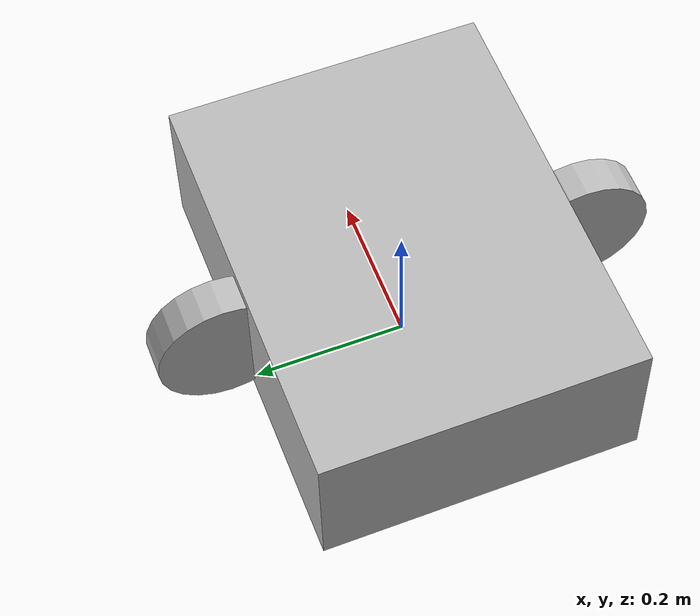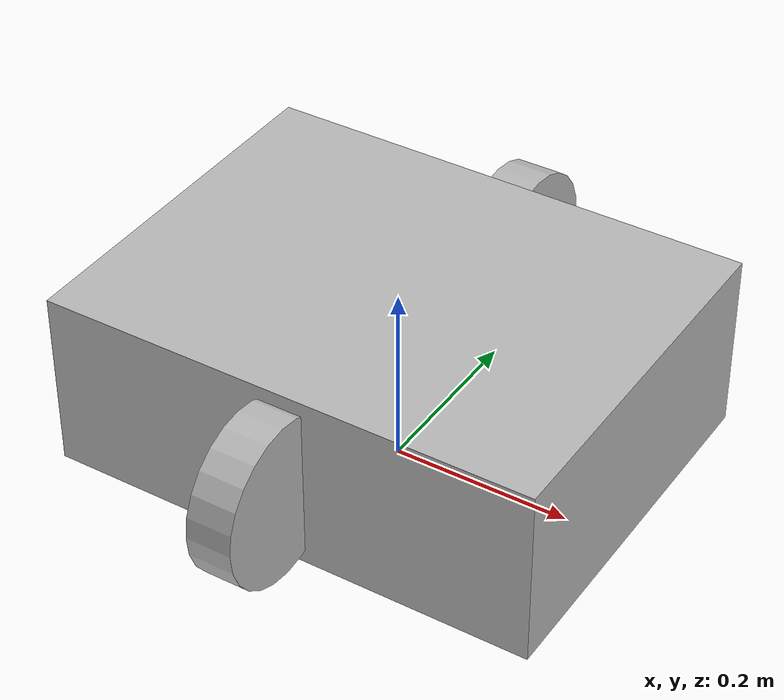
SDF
<?xml version="1.0"?>
<sdf version="1.9">
  <model name="research_ground_robot">
    <pose>0 0 0.12 0 0 0</pose>
    <link name="base_link">
      <inertial><mass>8.0</mass><inertia><ixx>0.12</ixx><iyy>0.18</iyy><izz>0.24</izz></inertia></inertial>
      <collision name="base_collision"><geometry><box><size>0.55 0.42 0.20</size></box></geometry></collision>
      <visual name="base_visual"><geometry><box><size>0.55 0.42 0.20</size></box></geometry></visual>
    </link>
    <link name="left_wheel">
      <pose>0 0.24 0 0 1.5708 0</pose>
      <inertial><mass>0.5</mass><inertia><ixx>0.01</ixx><iyy>0.01</iyy><izz>0.01</izz></inertia></inertial>
      <collision name="collision"><geometry><cylinder><radius>0.09</radius><length>0.05</length></cylinder></geometry></collision>
      <visual name="visual"><geometry><cylinder><radius>0.09</radius><length>0.05</length></cylinder></geometry></visual>
    </link>
    <link name="right_wheel">
      <pose>0 -0.24 0 0 1.5708 0</pose>
      <inertial><mass>0.5</mass><inertia><ixx>0.01</ixx><iyy>0.01</iyy><izz>0.01</izz></inertia></inertial>
      <collision name="collision"><geometry><cylinder><radius>0.09</radius><length>0.05</length></cylinder></geometry></collision>
      <visual name="visual"><geometry><cylinder><radius>0.09</radius><length>0.05</length></cylinder></geometry></visual>
    </link>
    <joint name="left_wheel_joint" type="revolute"><parent>base_link</parent><child>left_wheel</child><axis><xyz>0 1 0</xyz></axis></joint>
    <joint name="right_wheel_joint" type="revolute"><parent>base_link</parent><child>right_wheel</child><axis><xyz>0 1 0</xyz></axis></joint>
    <plugin filename="gz-sim-diff-drive-system" name="gz::sim::systems::DiffDrive">
      <left_joint>left_wheel_joint</left_joint><right_joint>right_wheel_joint</right_joint>
      <wheel_separation>0.48</wheel_separation><wheel_radius>0.09</wheel_radius>
      <topic>/swarm/__ROBOT__/cmd_vel</topic><odom_topic>/swarm/__ROBOT__/odom</odom_topic>
      <frame_id>__ROBOT__/odom</frame_id><child_frame_id>__ROBOT__/base_link</child_frame_id>
    </plugin>
    <link name="lidar_link">
      <pose>0 0 0.22 0 0 0</pose>
      <sensor name="lidar" type="gpu_lidar">
        <topic>/swarm/__ROBOT__/scan</topic><update_rate>10</update_rate>
        <lidar><scan><horizontal><samples>360</samples><resolution>1</resolution><min_angle>-3.14159</min_angle><max_angle>3.14159</max_angle></horizontal></scan><range><min>0.12</min><max>12.0</max><resolution>0.01</resolution></range></lidar>
      </sensor>
    </link>
    <joint name="lidar_joint" type="fixed"><parent>base_link</parent><child>lidar_link</child></joint>
  </model>
</sdf>
